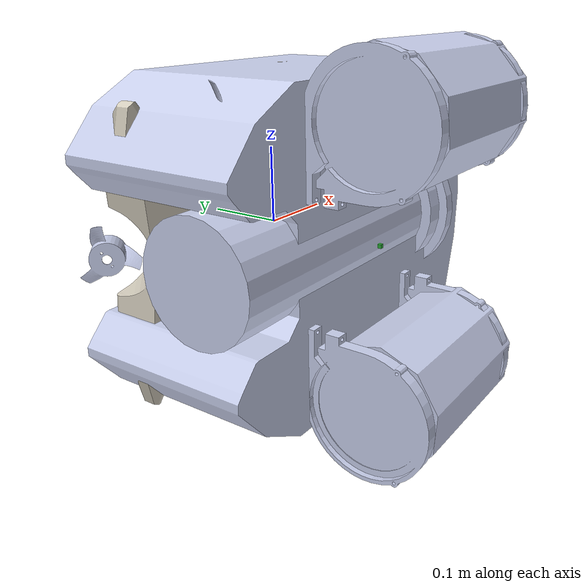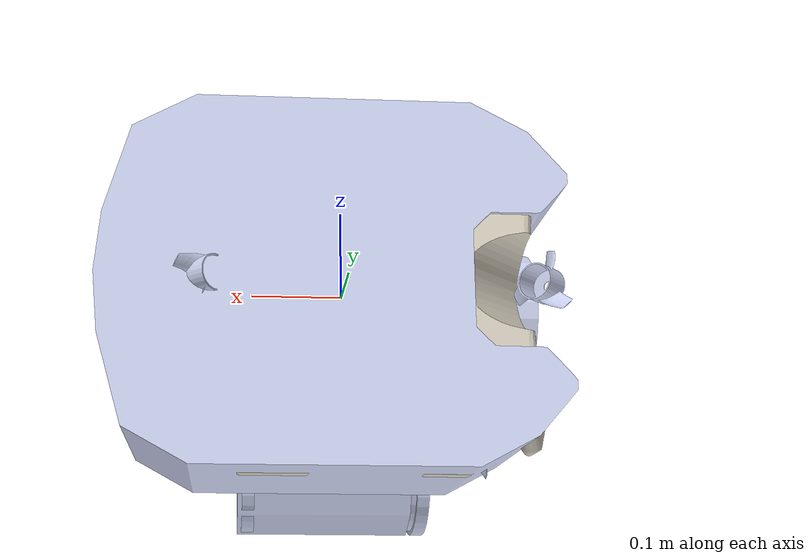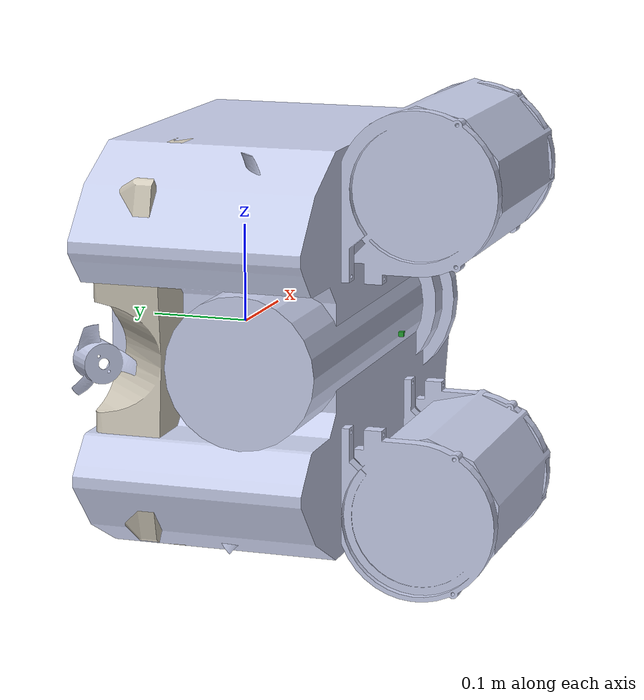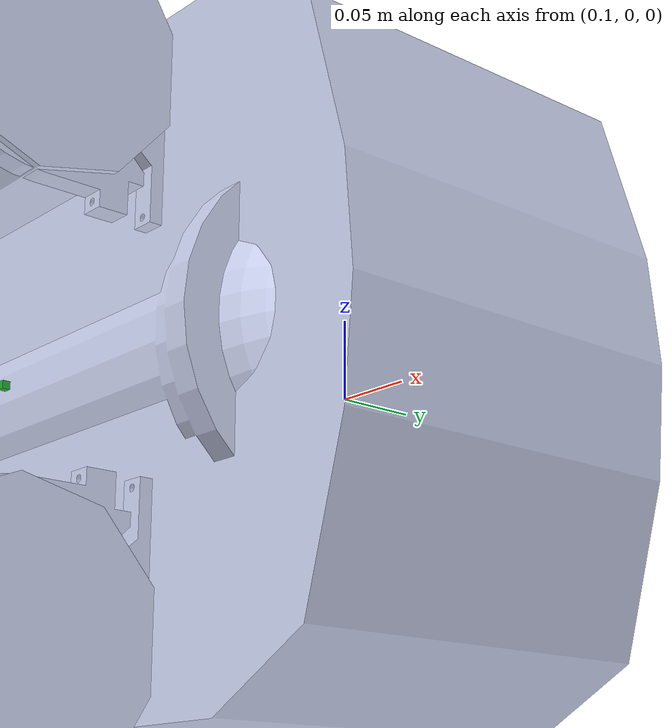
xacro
<?xml version="1.0"?>
<robot
  name="ROV_model_URDF" xmlns:xacro="http://www.ros.org/wiki/xacro">

  <xacro:property name="cameraSize" value="0.005"/>
  <xacro:property name="cameraMass" value="0.01"/>

  <xacro:include filename="$(find ROV_model_URDF)/urdf/materials.xacro" />
  <xacro:include filename="$(find ROV_model_URDF)/urdf/ROV_model_URDF.gazebo" />

  <link
    name="base_link">
    <inertial>
      <origin
        xyz="-0.0162700594279859 -0.0457302941825633 9.22944201185264E-06"
        rpy="0 0 0" />
      <mass
        value="5.34818886692229" />
      <inertia
        ixx="0.121283356250234"
        ixy="0.00114080615956075"
        ixz="-3.36356954034503E-05"
        iyy="0.189191244269149"
        iyz="-6.89655590354059E-06"
        izz="0.138419224644112" />
    </inertial>
    <visual>
      <origin
        xyz="0 0 0"
        rpy="0 0 0" />
      <geometry>
        <mesh
          filename="package://ROV_model_URDF/meshes/base_link.STL" />
      </geometry>
      <material
        name="">
        <color
          rgba="0.792156862745098 0.819607843137255 0.933333333333333 1" />
      </material>
    </visual>
    <collision>
      <origin
        xyz="0 0 0"
        rpy="0 0 0" />
      <geometry>
        <mesh
          filename="package://ROV_model_URDF/meshes/collision_model.STL" />
      </geometry>
    </collision>
  </link>
  <link
    name="motor_L_front_D_Link">
    <inertial>
      <origin
        xyz="4.5639E-07 2.482E-07 -0.041714"
        rpy="0 0 0" />
      <mass
        value="0.0077402" />
      <inertia
        ixx="2.207E-06"
        ixy="2.6918E-10"
        ixz="-7.3425E-12"
        iyy="2.2072E-06"
        iyz="8.6802E-12"
        izz="3.2145E-06" />
    </inertial>
    <visual>
      <origin
        xyz="0 0 0"
        rpy="0 0 0" />
      <geometry>
        <mesh
          filename="package://ROV_model_URDF/meshes/motor_L_front_D_Link.STL" />
      </geometry>
      <material
        name="">
        <color
          rgba="0.79216 0.81961 0.93333 1" />
      </material>
    </visual>
  </link>
  <joint
    name="motor1"
    type="continuous">
    <origin
      xyz="0.106438289639293 -0.0662499999998972 -0.184356525525989"
      rpy="3.14159265358979 -1.0471975511966 -3.14159265358979" />
    <parent
      link="base_link" />
    <child
      link="motor_L_front_D_Link" />
    <axis
      xyz="0 0 1" />
    <limit effort="100" velocity="100"/>
    <joint_properties damping="0.0" friction="0.0"/>
  </joint>
  <link
    name="motor_R_front_D_Link">
    <inertial>
      <origin
        xyz="0.0098117 1.2141E-07 2.883E-07"
        rpy="0 0 0" />
      <mass
        value="0.0077403" />
      <inertia
        ixx="3.2146E-06"
        ixy="-4.1044E-12"
        ixz="1.7606E-12"
        iyy="2.2076E-06"
        iyz="6.0721E-11"
        izz="2.2066E-06" />
    </inertial>
    <visual>
      <origin
        xyz="0 0 0"
        rpy="0 0 0" />
      <geometry>
        <mesh
          filename="package://ROV_model_URDF/meshes/motor_R_front_D_Link.STL" />
      </geometry>
      <material
        name="">
        <color
          rgba="0.79216 0.81961 0.93333 1" />
      </material>
    </visual>
  </link>
  <joint
    name="motor2"
    type="continuous">
    <origin
      xyz="0.13406681603541 -0.0662499999998972 0.168405188373878"
      rpy="-3.06722563908836E-15 0.523598775598296 -4.4316310164893E-15" />
    <parent
      link="base_link" />
    <child
      link="motor_R_front_D_Link" />
    <axis
      xyz="-1 0 0" />
    <limit effort="100" velocity="100"/>
    <joint_properties damping="0.0" friction="0.0"/>
  </joint>
  <link
    name="motor_L_back_D_Link">
    <inertial>
      <origin
        xyz="-0.0052 -1.1098E-07 7.8497E-07"
        rpy="0 0 0" />
      <mass
        value="0.0077405" />
      <inertia
        ixx="3.2146E-06"
        ixy="3.3276E-11"
        ixz="1.8173E-11"
        iyy="2.2071E-06"
        iyz="2.4826E-10"
        izz="2.2071E-06" />
    </inertial>
    <visual>
      <origin
        xyz="0 0 0"
        rpy="0 0 0" />
      <geometry>
        <mesh
          filename="package://ROV_model_URDF/meshes/motor_L_back_D_Link.STL" />
      </geometry>
      <material
        name="">
        <color
          rgba="0.79216 0.81961 0.93333 1" />
      </material>
    </visual>
  </link>
  <joint
    name="motor3"
    type="continuous">
    <origin
      xyz="-0.154040619555901 -0.0662499999999438 -0.169573961316496"
      rpy="0.341959311812831 0.523464061748854 2.02942161282335E-15" />
    <parent
      link="base_link" />
    <child
      link="motor_L_back_D_Link" />
    <axis
      xyz="-1 0 0" />
    <limit effort="100" velocity="100"/>
    <joint_properties damping="0.0" friction="0.0"/>
  </joint>
  <link
    name="motor_R_back_down">
    <inertial>
      <origin
        xyz="-0.043456 2.4836E-07 4.5644E-07"
        rpy="0 0 0" />
      <mass
        value="0.0077402" />
      <inertia
        ixx="3.2145E-06"
        ixy="-8.6815E-12"
        ixz="7.3443E-12"
        iyy="2.2072E-06"
        iyz="2.6926E-10"
        izz="2.207E-06" />
    </inertial>
    <visual>
      <origin
        xyz="0 0 0"
        rpy="0 0 0" />
      <geometry>
        <mesh
          filename="package://ROV_model_URDF/meshes/motor_R_back_down.STL" />
      </geometry>
      <material
        name="">
        <color
          rgba="0.79216 0.81961 0.93333 1" />
      </material>
    </visual>
  </link>
  <joint
    name="motor4"
    type="continuous">
    <origin
      xyz="-0.120907599867261 -0.0662499999999711 0.188697368313432"
      rpy="1.37701462783123E-16 -0.523464061748854 -1.91295301123142E-16" />
    <parent
      link="base_link" />
    <child
      link="motor_R_back_down" />
    <axis
      xyz="-1 0 0" />
    <limit effort="100" velocity="100"/>
    <joint_properties damping="0.0" friction="0.0"/>
  </joint>
  <link
    name="motor_front_Up_Link">
    <inertial>
      <origin
        xyz="-0.050773 6.6319E-07 3.3255E-07"
        rpy="0 0 0" />
      <mass
        value="0.0077405" />
      <inertia
        ixx="3.2146E-06"
        ixy="-1.1643E-12"
        ixz="-3.6885E-11"
        iyy="2.2061E-06"
        iyz="-7.4844E-10"
        izz="2.208E-06" />
    </inertial>
    <visual>
      <origin
        xyz="0 0 0"
        rpy="0 0 0" />
      <geometry>
        <mesh
          filename="package://ROV_model_URDF/meshes/motor_front_Up_Link.STL" />
      </geometry>
      <material
        name="">
        <color
          rgba="0.79216 0.81961 0.93333 1" />
      </material>
    </visual>
  </link>
  <joint
    name="motor5"
    type="continuous">
    <origin
      xyz="0.116214176459713 0.116214176459712 0"
      rpy="-2.35619449019235 -2.2310901599573E-16 2.35619449019234" />
    <parent
      link="base_link" />
    <child
      link="motor_front_Up_Link" />
    <axis
      xyz="1 0 0" />
    <limit effort="100" velocity="100"/>
    <joint_properties damping="0.0" friction="0.0"/>
  </joint>
  <link
    name="motor_left_Up_Link">
    <inertial>
      <origin
        xyz="-0.020407 1.7249E-07 8.519E-07"
        rpy="0 0 0" />
      <mass
        value="0.0077404" />
      <inertia
        ixx="3.2146E-06"
        ixy="1.9709E-12"
        ixz="3.205E-11"
        iyy="2.2073E-06"
        iyz="4.8494E-10"
        izz="2.2069E-06" />
    </inertial>
    <visual>
      <origin
        xyz="0 0 0"
        rpy="0 0 0" />
      <geometry>
        <mesh
          filename="package://ROV_model_URDF/meshes/motor_left_Up_Link.STL" />
      </geometry>
      <material
        name="">
        <color
          rgba="0.79216 0.81961 0.93333 1" />
      </material>
    </visual>
  </link>
  <joint
    name="motor6"
    type="continuous">
    <origin
      xyz="-0.0243050184490747 0.0738045309959282 -0.127833197513738"
      rpy="-1.5707963267949 -0.523598775598307 1.5707963267949" />
    <parent
      link="base_link" />
    <child
      link="motor_left_Up_Link" />
    <axis
      xyz="1 0 0" />
    <limit effort="100" velocity="100"/>
    <joint_properties damping="0.0" friction="0.0"/>
  </joint>
  <link
    name="motor_right_Up_Link">
    <inertial>
      <origin
        xyz="-0.020407 5.3561E-07 -5.0663E-07"
        rpy="0 0 0" />
      <mass
        value="0.0077398" />
      <inertia
        ixx="3.2143E-06"
        ixy="5.9101E-15"
        ixz="4.8677E-12"
        iyy="2.2059E-06"
        iyz="9.1583E-10"
        izz="2.208E-06" />
    </inertial>
    <visual>
      <origin
        xyz="0 0 0"
        rpy="0 0 0" />
      <geometry>
        <mesh
          filename="package://ROV_model_URDF/meshes/motor_right_Up_Link.STL" />
      </geometry>
      <material
        name="">
        <color
          rgba="0.79216 0.81961 0.93333 1" />
      </material>
    </visual>
  </link>
  <joint
    name="motor7"
    type="continuous">
    <origin
      xyz="-0.0243050184616294 0.0734049796681489 0.127141154313793"
      rpy="0.791597323195276 0.523598775598302 1.5707963267949" />
    <parent
      link="base_link" />
    <child
      link="motor_right_Up_Link" />
    <axis
      xyz="1 0 0" />
    <limit effort="100" velocity="100"/>
    <joint_properties damping="0.0" friction="0.0"/>
  </joint>
  <link
    name="motor_back_Up_Link">
    <inertial>
      <origin
        xyz="-0.0023075 9.7054E-07 -1.0177E-06"
        rpy="0 0 0" />
      <mass
        value="0.0077396" />
      <inertia
        ixx="3.2142E-06"
        ixy="7.3175E-12"
        ixz="-1.4344E-12"
        iyy="2.2078E-06"
        iyz="7.4361E-10"
        izz="2.206E-06" />
    </inertial>
    <visual>
      <origin
        xyz="0 0 0"
        rpy="0 0 0" />
      <geometry>
        <mesh
          filename="package://ROV_model_URDF/meshes/motor_back_Up_Link.STL" />
      </geometry>
      <material
        name="">
        <color
          rgba="0.79216 0.81961 0.93333 1" />
      </material>
    </visual>
  </link>
  <joint
    name="motor8"
    type="continuous">
    <origin
      xyz="-0.211458331086115 0.0739440069961819 0"
      rpy="0.785398163397449 -1.69415452362406E-15 0.785398163397453" />
    <parent
      link="base_link" />
    <child
      link="motor_back_Up_Link" />
    <axis
      xyz="1 0 0" />
    <limit effort="100" velocity="100"/>
    <joint_properties damping="0.0" friction="0.0"/>
  </joint>
  <link
    name="batteries_Link">
    <inertial>
      <origin
        xyz="-0.0066458 0.015259 0.16192"
        rpy="0 0 0" />
      <mass
        value="7.7644" />
      <inertia
        ixx="0.2267"
        ixy="5.7908E-06"
        ixz="6.4111E-05"
        iyy="0.24465"
        iyz="-0.018251"
        izz="0.044234" />
    </inertial>
    <visual>
      <origin
        xyz="0 0 0"
        rpy="0 0 0" />
      <geometry>
        <mesh
          filename="package://ROV_model_URDF/meshes/batteries_Link.STL" />
      </geometry>
      <material
        name="">
        <color
          rgba="0.79216 0.81961 0.93333 1" />
      </material>
    </visual>
  </link>
  <joint
    name="batteries_Joint"
    type="fixed">
    <origin
      xyz="0 -0.217 -0.162638026855217"
      rpy="0.0900809160675066 -2.98185944890368E-17 7.62775137240148E-16" />
    <parent
      link="base_link" />
    <child
      link="batteries_Link" />
    <axis
      xyz="0 0 0" />
  </joint>
  <link
    name="main_housing_Link">
    <inertial>
      <origin
        xyz="0.002228 -1.1102E-16 2.9407E-15"
        rpy="0 0 0" />
      <mass
        value="7.9374" />
      <inertia
        ixx="0.024341"
        ixy="5.6185E-17"
        ixz="8.9997E-16"
        iyy="0.15267"
        iyz="-4.3449E-31"
        izz="0.15267" />
    </inertial>
    <visual>
      <origin
        xyz="0 0 0"
        rpy="0 0 0" />
      <geometry>
        <mesh
          filename="package://ROV_model_URDF/meshes/main_housing_Link.STL" />
      </geometry>
      <material
        name="">
        <color
          rgba="0.79216 0.81961 0.93333 1" />
      </material>
    </visual>
  </link>
  <joint
    name="main_housing_Joint"
    type="fixed">
    <origin
      xyz="0 -0.0747500000000039 0.000633048491818368"
      rpy="0 0 1.74181659958814E-48" />
    <parent
      link="base_link" />
    <child
      link="main_housing_Link" />
    <axis
      xyz="0 0 0" />
  </joint>
  <link
    name="buoyancy_Link">
    <inertial>
      <origin
        xyz="-0.027317 0.045953 3.6831E-05"
        rpy="0 0 0" />
      <mass
        value="1.0875" />
      <inertia
        ixx="0.010769"
        ixy="0.00027532"
        ixz="-5.7297E-06"
        iyy="0.022695"
        iyz="-1.2915E-06"
        izz="0.012737" />
    </inertial>
    <visual>
      <origin
        xyz="0 0 0"
        rpy="0 0 0" />
      <geometry>
        <mesh
          filename="package://ROV_model_URDF/meshes/buoyancy_Link.STL" />
      </geometry>
      <material
        name="">
        <color
          rgba="0.84314 0.81569 0.75294 1" />
      </material>
    </visual>
  </link>
  <joint
    name="buoyancy_Joint"
    type="fixed">
    <origin
      xyz="0 0 0"
      rpy="1.19262238973406E-16 0 -1.22460635382238E-16" />
    <parent
      link="base_link" />
    <child
      link="buoyancy_Link" />
    <axis
      xyz="0 0 0" />
  </joint>

  <!--plugin name="BuoyancyPlugin" filename="libBuoyancyPlugin.so"-->
    <!-- a viscous liquid -->
    <!-- THIS shit doesn't work blet -->
  <!--/plugin-->

  <!--Camera front-->
  <link name="camera_front_left">

    <visual>
      <origin xyz="0.05 -0.08 -0.03" rpy="-1.5708 0 0"/>
      <geometry>
        <box size="${cameraSize} ${cameraSize} ${cameraSize}"/>
      </geometry>
      <material name="green"/>
    </visual>

    <inertial>
      <mass value="${cameraMass}" />
      <origin xyz="0.05 -0.08 0" rpy="-1.5708 0 0"/>
      <box_inertia m="${cameraMass}" x="${cameraSize}" y="${cameraSize}" z="${cameraSize}" />
      <inertia ixx="1e-6" ixy="0" ixz="0" iyy="1e-6" iyz="0" izz="1e-6" />
    </inertial>
  </link>

  <link name="camera_front_right">

    <visual>
      <origin xyz="0.05 -0.08 0.03" rpy="-1.5708 0 0"/>
      <geometry>
        <box size="${cameraSize} ${cameraSize} ${cameraSize}"/>
      </geometry>
      <material name="green"/>
    </visual>

    <inertial>
      <mass value="${cameraMass}" />
      <origin xyz="0.05 -0.08 0" rpy="-1.5708 0 0"/>
      <box_inertia m="${cameraMass}" x="${cameraSize}" y="${cameraSize}" z="${cameraSize}" />
      <inertia ixx="1e-6" ixy="0" ixz="0" iyy="1e-6" iyz="0" izz="1e-6" />
    </inertial>
  </link>

  <!--Camera bottom-->
  <link name="camera_bottom">

    <visual>
      <origin xyz="-0.21 -0.17 0" rpy="0 0 -1.5708"/>
      <geometry>
        <box size="${cameraSize} ${cameraSize} ${cameraSize}"/>
      </geometry>
      <material name="green"/>
    </visual>

    <inertial>
      <mass value="${cameraMass}" />
      <origin xyz="-0.21 -0.17 0" rpy="0 0 -1.5708"/>
      <box_inertia m="${cameraMass}" x="${cameraSize}" y="${cameraSize}" z="${cameraSize}" />
      <inertia ixx="1e-6" ixy="0" ixz="0" iyy="1e-6" iyz="0" izz="1e-6" />
    </inertial>
  </link>

  <joint name="camera_joint_fl" type="fixed">
    <axis xyz="0 0 0" />
    <origin xyz=".2 0 0" rpy="0 0 0"/>
    <parent link="base_link"/>
    <child link="camera_front_left"/>
  </joint>

  <joint name="camera_joint_fr" type="fixed">
    <axis xyz="0 0 0" />
    <origin xyz=".2 0 0" rpy="0 0 0"/>
    <parent link="base_link"/>
    <child link="camera_front_right"/>
  </joint>

  <joint name="camera_joint_b" type="fixed">
    <axis xyz="0 0 0" />
    <origin xyz=".2 0 0" rpy="0 0 0"/>
    <parent link="base_link"/>
    <child link="camera_bottom"/>
  </joint>

</robot>
